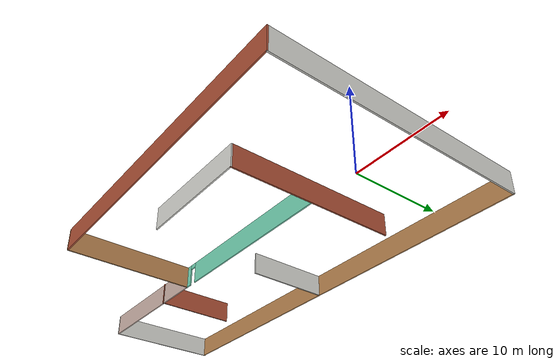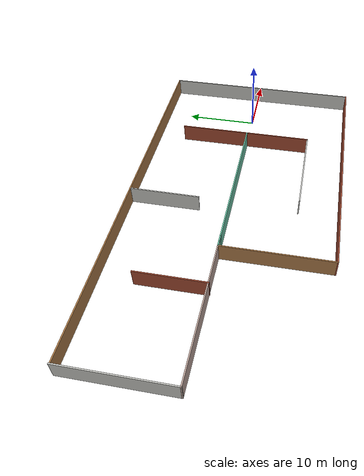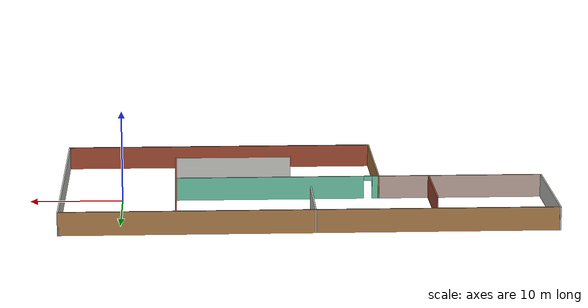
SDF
<?xml version='1.0'?>
<sdf version='1.6'>
  <model name='MyBuilding2'>
    <pose frame=''>-19.7235 -0.418221 0 0 -0 0</pose>
    <link name='Wall_10'>
      <collision name='Wall_10_Collision'>
        <geometry>
          <box>
            <size>52.25 0.15 2.5</size>
          </box>
        </geometry>
        <pose frame=''>0 0 1.25 0 -0 0</pose>
      </collision>
      <visual name='Wall_10_Visual'>
        <pose frame=''>0 0 1.25 0 -0 0</pose>
        <geometry>
          <box>
            <size>52.25 0.15 2.5</size>
          </box>
        </geometry>
        <material>
          <script>
            <uri>file://media/materials/scripts/gazebo.material</uri>
            <name>Gazebo/Wood</name>
          </script>
          <ambient>1 1 1 1</ambient>
        </material>
        <meta>
          <layer>0</layer>
        </meta>
      </visual>
      <pose frame=''>0.05 13.875 0 0 -0 0</pose>
    </link>
    <link name='Wall_11'>
      <collision name='Wall_11_Collision'>
        <geometry>
          <box>
            <size>28 0.15 2.5</size>
          </box>
        </geometry>
        <pose frame=''>0 0 1.25 0 -0 0</pose>
      </collision>
      <visual name='Wall_11_Visual'>
        <pose frame=''>0 0 1.25 0 -0 0</pose>
        <geometry>
          <box>
            <size>28 0.15 2.5</size>
          </box>
        </geometry>
        <material>
          <script>
            <uri>file://media/materials/scripts/gazebo.material</uri>
            <name>Gazebo/CeilingTiled</name>
          </script>
          <ambient>1 1 1 1</ambient>
        </material>
        <meta>
          <layer>0</layer>
        </meta>
      </visual>
      <pose frame=''>26.1 -0.049999 0 0 0 -1.5708</pose>
    </link>
    <link name='Wall_12'>
      <collision name='Wall_12_Collision'>
        <geometry>
          <box>
            <size>34.5 0.15 2.5</size>
          </box>
        </geometry>
        <pose frame=''>0 0 1.25 0 -0 0</pose>
      </collision>
      <visual name='Wall_12_Visual'>
        <pose frame=''>0 0 1.25 0 -0 0</pose>
        <geometry>
          <box>
            <size>34.5 0.15 2.5</size>
          </box>
        </geometry>
        <material>
          <script>
            <uri>file://media/materials/scripts/gazebo.material</uri>
            <name>Gazebo/Bricks</name>
          </script>
          <ambient>1 1 1 1</ambient>
        </material>
        <meta>
          <layer>0</layer>
        </meta>
      </visual>
      <pose frame=''>8.925 -13.975 0 0 -0 3.14159</pose>
    </link>
    <link name='Wall_13'>
      <collision name='Wall_13_Collision'>
        <geometry>
          <box>
            <size>14.5 0.15 2.5</size>
          </box>
        </geometry>
        <pose frame=''>0 0 1.25 0 -0 0</pose>
      </collision>
      <visual name='Wall_13_Visual'>
        <pose frame=''>0 0 1.25 0 -0 0</pose>
        <geometry>
          <box>
            <size>14.5 0.15 2.5</size>
          </box>
        </geometry>
        <material>
          <script>
            <uri>file://media/materials/scripts/gazebo.material</uri>
            <name>Gazebo/Wood</name>
          </script>
          <ambient>1 1 1 1</ambient>
        </material>
        <meta>
          <layer>0</layer>
        </meta>
      </visual>
      <pose frame=''>-8.25 -6.8 0 0 -0 1.5708</pose>
    </link>
    <link name='Wall_14'>
      <collision name='Wall_14_Collision'>
        <geometry>
          <box>
            <size>18 0.15 2.5</size>
          </box>
        </geometry>
        <pose frame=''>0 0 1.25 0 -0 0</pose>
      </collision>
      <visual name='Wall_14_Visual'>
        <pose frame=''>0 0 1.25 0 -0 0</pose>
        <geometry>
          <box>
            <size>18 0.15 2.5</size>
          </box>
        </geometry>
        <material>
          <script>
            <uri>file://media/materials/scripts/gazebo.material</uri>
            <name>Gazebo/Grey</name>
          </script>
          <ambient>0.760784 0.662745 0.627451 1</ambient>
        </material>
        <meta>
          <layer>0</layer>
        </meta>
      </visual>
      <pose frame=''>-17.175 0.375001 0 0 -0 3.14159</pose>
    </link>
    <link name='Wall_15'>
      <collision name='Wall_15_Collision'>
        <geometry>
          <box>
            <size>13.75 0.15 2.5</size>
          </box>
        </geometry>
        <pose frame=''>0 0 1.25 0 -0 0</pose>
      </collision>
      <visual name='Wall_15_Visual'>
        <pose frame=''>0 0 1.25 0 -0 0</pose>
        <geometry>
          <box>
            <size>13.75 0.15 2.5</size>
          </box>
        </geometry>
        <material>
          <script>
            <uri>file://media/materials/scripts/gazebo.material</uri>
            <name>Gazebo/CeilingTiled</name>
          </script>
          <ambient>1 1 1 1</ambient>
        </material>
        <meta>
          <layer>0</layer>
        </meta>
      </visual>
      <pose frame=''>-26.1 7.175 0 0 -0 1.5708</pose>
    </link>
    <link name='Wall_17'>
      <collision name='Wall_17_Collision'>
        <geometry>
          <box>
            <size>18.75 0.15 2.5</size>
          </box>
        </geometry>
        <pose frame=''>0 0 1.25 0 -0 0</pose>
      </collision>
      <visual name='Wall_17_Visual'>
        <pose frame=''>0 0 1.25 0 -0 0</pose>
        <geometry>
          <box>
            <size>18.75 0.15 2.5</size>
          </box>
        </geometry>
        <material>
          <script>
            <uri>file://media/materials/scripts/gazebo.material</uri>
            <name>Gazebo/Bricks</name>
          </script>
          <ambient>1 1 1 1</ambient>
        </material>
        <meta>
          <layer>0</layer>
        </meta>
      </visual>
      <pose frame=''>13.9162 0.668206 0 0 0 -1.5708</pose>
    </link>
    <link name='Wall_18'>
      <collision name='Wall_18_Collision'>
        <geometry>
          <box>
            <size>13 0.15 2.5</size>
          </box>
        </geometry>
        <pose frame=''>0 0 1.25 0 -0 0</pose>
      </collision>
      <visual name='Wall_18_Visual'>
        <pose frame=''>0 0 1.25 0 -0 0</pose>
        <geometry>
          <box>
            <size>13 0.15 2.5</size>
          </box>
        </geometry>
        <material>
          <script>
            <uri>file://media/materials/scripts/gazebo.material</uri>
            <name>Gazebo/CeilingTiled</name>
          </script>
          <ambient>1 1 1 1</ambient>
        </material>
        <meta>
          <layer>0</layer>
        </meta>
      </visual>
      <pose frame=''>7.49122 -8.63179 0 0 -0 3.14159</pose>
    </link>
    <link name='Wall_20'>
      <pose frame=''>2.8 0.375001 0 0 -0 0</pose>
      <visual name='Wall_20_Visual_0'>
        <pose frame=''>-10.7218 0 1.25 0 -0 0</pose>
        <geometry>
          <box>
            <size>0.806323 0.15 2.5</size>
          </box>
        </geometry>
        <material>
          <script>
            <uri>file://media/materials/scripts/gazebo.material</uri>
            <name>Gazebo/Grey</name>
          </script>
          <ambient>0.435294 0.796078 0.67451 1</ambient>
        </material>
        <meta>
          <layer>0</layer>
        </meta>
      </visual>
      <collision name='Wall_20_Collision_0'>
        <geometry>
          <box>
            <size>0.806323 0.15 2.5</size>
          </box>
        </geometry>
        <pose frame=''>-10.7218 0 1.25 0 -0 0</pose>
      </collision>
      <visual name='Wall_20_Visual_1'>
        <pose frame=''>0.853161 0 1.25 0 -0 0</pose>
        <geometry>
          <box>
            <size>20.5437 0.15 2.5</size>
          </box>
        </geometry>
        <material>
          <script>
            <uri>file://media/materials/scripts/gazebo.material</uri>
            <name>Gazebo/Grey</name>
          </script>
          <ambient>0.435294 0.796078 0.67451 1</ambient>
        </material>
        <meta>
          <layer>0</layer>
        </meta>
      </visual>
      <collision name='Wall_20_Collision_1'>
        <geometry>
          <box>
            <size>20.5437 0.15 2.5</size>
          </box>
        </geometry>
        <pose frame=''>0.853161 0 1.25 0 -0 0</pose>
      </collision>
      <visual name='Wall_20_Visual_2'>
        <pose frame=''>-9.86868 0 2.25 0 -0 0</pose>
        <geometry>
          <box>
            <size>0.9 0.15 0.5</size>
          </box>
        </geometry>
        <material>
          <script>
            <uri>file://media/materials/scripts/gazebo.material</uri>
            <name>Gazebo/Grey</name>
          </script>
          <ambient>0.435294 0.796078 0.67451 1</ambient>
        </material>
        <meta>
          <layer>0</layer>
        </meta>
      </visual>
      <collision name='Wall_20_Collision_2'>
        <geometry>
          <box>
            <size>0.9 0.15 0.5</size>
          </box>
        </geometry>
        <pose frame=''>-9.86868 0 2.25 0 -0 0</pose>
      </collision>
    </link>
    <link name='Wall_22'>
      <collision name='Wall_22_Collision'>
        <geometry>
          <box>
            <size>9.25 0.15 2.5</size>
          </box>
        </geometry>
        <pose frame=''>0 0 1.25 0 -0 0</pose>
      </collision>
      <visual name='Wall_22_Visual'>
        <pose frame=''>0 0 1.25 0 -0 0</pose>
        <geometry>
          <box>
            <size>9.25 0.15 2.5</size>
          </box>
        </geometry>
        <material>
          <script>
            <uri>file://media/materials/scripts/gazebo.material</uri>
            <name>Gazebo/Bricks</name>
          </script>
          <ambient>1 1 1 1</ambient>
        </material>
        <meta>
          <layer>0</layer>
        </meta>
      </visual>
      <pose frame=''>-13.7373 4.85169 0 0 -0 1.5708</pose>
    </link>
    <link name='Wall_24'>
      <collision name='Wall_24_Collision'>
        <geometry>
          <box>
            <size>9.5 0.15 2.5</size>
          </box>
        </geometry>
        <pose frame=''>0 0 1.25 0 -0 0</pose>
      </collision>
      <visual name='Wall_24_Visual'>
        <pose frame=''>0 0 1.25 0 -0 0</pose>
        <geometry>
          <box>
            <size>9.5 0.15 2.5</size>
          </box>
        </geometry>
        <material>
          <script>
            <uri>file://media/materials/scripts/gazebo.material</uri>
            <name>Gazebo/CeilingTiled</name>
          </script>
          <ambient>1 1 1 1</ambient>
        </material>
        <meta>
          <layer>0</layer>
        </meta>
      </visual>
      <pose frame=''>-0.583549 9.20876 0 0 0 -1.5708</pose>
    </link>
    <static>1</static>
  </model>
</sdf>
